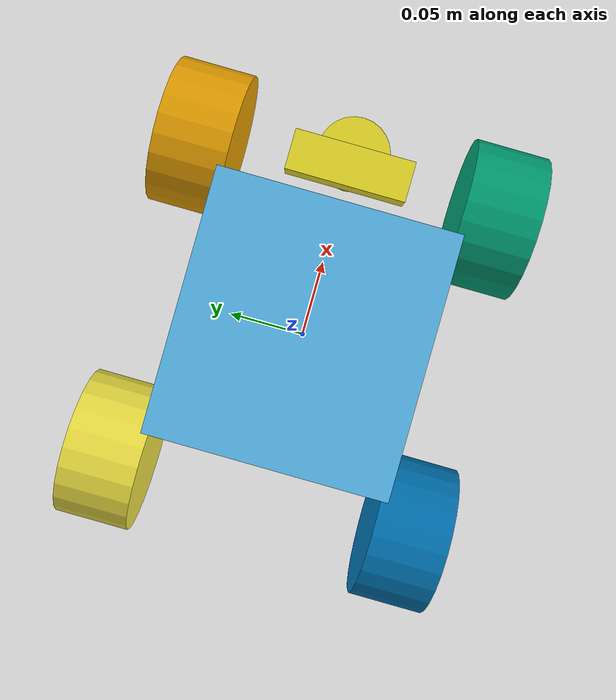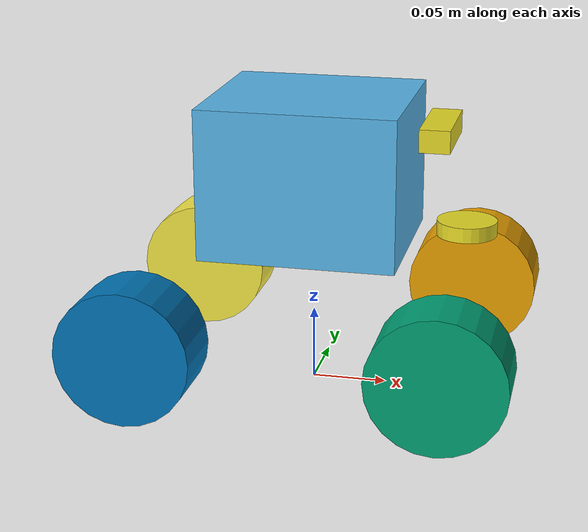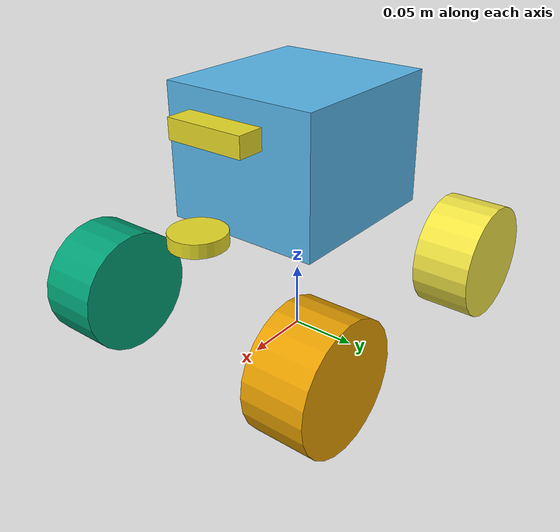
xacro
<?xml version="1.0"?>

<robot name="limo_ackerman" xmlns:xacro="http://ros.org/wiki/xacro">

    <xacro:arg name="robot_namespace" default="/" />
    <xacro:include filename="$(find limo_description)/urdf/limo_xacro.xacro" />
    <xacro:include filename="$(find limo_description)/urdf/limo_steering_hinge.xacro" />
    <xacro:include filename="$(find limo_description)/urdf/limo_ackerman.gazebo" />

    <!-- Variables -->
    <xacro:property name="M_PI" value="3.14159"/>

    <!-- Vehicle Geometries -->
    <xacro:property name="base_x_size" value="0.13" />
    <xacro:property name="base_y_size" value="0.12" />
    <xacro:property name="base_z_size" value="0.10" />

    <xacro:property name="wheelbase" value="0.2"/>
    <xacro:property name="track" value="0.14"/>
    <xacro:property name="wheel_vertical_offset" value="-0.100998" />
    <xacro:property name="base_mass" value="2.1557"/>

    <xacro:property name="wheel_length" value="0.045" />
    <xacro:property name="wheel_radius" value="0.045" />
    <link name="base_footprint"/>

    <joint name="base_joint" type="fixed">
    <parent link="base_footprint"/>
    <child link="base_link"/>
    <origin xyz="0.0 0.0 0.15" rpy="0 0 0"/>
    </joint>
    <!-- Base link -->
    <link name="base_link">
        <visual>
            <origin xyz="0 0 0" rpy="0 0 0" />
            <geometry>
                <box size="${base_x_size} ${base_y_size} ${base_z_size}"/>
            </geometry>
        </visual>
        <collision>
            <origin xyz="0 0 0" rpy="0 0 0" />
          <geometry>
              <box size="${base_x_size} ${base_y_size} ${base_z_size}"/>
          </geometry>
        </collision>
    </link>

    <link name="inertial_link">
        <inertial>
            <origin xyz="0.0 0.0 0.0" />
            <mass value="${base_mass}" />
            <inertia ixx="0.24" ixy="0" ixz="0"
                     iyy="0.96" iyz="0"
                     izz="0.96" />
        </inertial>
    </link>

    <joint name="inertial_joint" type="fixed">
        <origin xyz="0 0 0" rpy="0 0 0" />
        <parent link="base_link" />
        <child link="inertial_link" />
    </joint>

    <xacro:limo_laser parent_prefix="base_link" frame_prefix="laser">
        <origin xyz="0.103 0 -0.034" rpy="0 0 0"/>
    </xacro:limo_laser>

    <xacro:limo_depth_camera parent_prefix="base_link" frame_prefix="depth_camera">
        <origin xyz="0.084 0 0.03" rpy="0 0 0"/>
    </xacro:limo_depth_camera>

    <xacro:limo_imu parent_prefix="base_link" frame_prefix="imu">
        <origin xyz="0.0 0 -0.1" rpy="0 0 0"/>
    </xacro:limo_imu>

    <xacro:limo_left_steering_hinge parent_prefix="base_link" wheel_prefix="left_steering_hinge">
        <origin xyz="${wheelbase/2} ${track/2} ${wheel_vertical_offset}" rpy="0 0  0" />
    </xacro:limo_left_steering_hinge>

    <xacro:limo_right_steering_hinge parent_prefix="base_link" wheel_prefix="right_steering_hinge">
        <origin xyz="${wheelbase/2} ${-track/2} ${wheel_vertical_offset}" rpy="${M_PI} 0 0" />
    </xacro:limo_right_steering_hinge>

    <link name="rear_left_wheel_link">
        <inertial>
            <origin xyz="0 0 0" />
            <mass value="0.5" />
            <inertia ixx="0.01055" ixy="0" ixz="0" iyy="0.00075" iyz="0" izz="0.01055" />
        </inertial>
        <visual>
            <origin xyz="0 ${wheel_length/2} 0" rpy="1.57 0 0" />
            <geometry>
                <cylinder length="${wheel_length}" radius="${wheel_radius}" />
            </geometry>
        </visual>
        <collision>
            <origin xyz="0 ${wheel_length/2} 0" rpy="1.57 0 0" />
            <geometry>
                <cylinder length="${wheel_length}" radius="${wheel_radius}" />
            </geometry>
        </collision>
    </link>
    <joint name="rear_left_wheel" type="continuous">
        <parent link="base_link"/>
        <child link="rear_left_wheel_link"/>
        <origin xyz="${-wheelbase/2} ${track/2} ${wheel_vertical_offset}" rpy="0 0 0" />
        <axis xyz="0 1 0"/>
    </joint>

    <link name="rear_right_wheel_link">
        <inertial>
            <origin xyz="0 0 0" />
            <mass value="0.5" />
            <inertia ixx="0.01055" ixy="0" ixz="0" iyy="0.00075" iyz="0" izz="0.01055" />
        </inertial>
        <visual>
            <origin xyz="0 ${wheel_length/2} 0" rpy="1.57 0 0" />
                <geometry>
                  <cylinder length="${wheel_length}" radius="${wheel_radius}" />
                </geometry>
        </visual>
            <collision>
                <origin xyz="0 ${wheel_length/2} 0" rpy="1.57 0 0" />
                <geometry>
                  <cylinder length="${wheel_length}" radius="${wheel_radius}" />
                </geometry>
            </collision>
        </link>

        <joint name="rear_right_wheel" type="continuous">
            <parent link="base_link"/>
            <child link="rear_right_wheel_link"/>
            <origin xyz="${-wheelbase/2} ${-track/2} ${wheel_vertical_offset}" rpy="${M_PI} 0 0" />
            <axis xyz="0 -1 0"/>
        </joint>
</robot>

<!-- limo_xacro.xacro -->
<robot name="limo_xacro" xmlns:xacro="http://ros.org/wiki/xacro">
    <xacro:macro name="limo_wheel1" params="parent_prefix wheel_prefix reflect *joint_pose">
        <link name="${wheel_prefix}_wheel_link">
            <inertial>
                <origin xyz="0 0 0" />
                <mass value="0.5" />
                <inertia ixx="0.01055" ixy="0" ixz="0" iyy="0.00075" iyz="0" izz="0.01055" />
            </inertial>
            <visual>
                <origin xyz="0 ${wheel_length/2} 0" rpy="1.57 0 0" />
                <geometry>
                    <cylinder length="${wheel_length}" radius="${wheel_radius}" />
                </geometry>
            </visual>
            <collision>
              <origin xyz="0 ${wheel_length/2} 0" rpy="1.57 0 0" />
              <geometry>
                  <cylinder length="${wheel_length}" radius="${wheel_radius}" />
              </geometry>
            </collision>
        </link>

        <joint name="${wheel_prefix}_wheel" type="continuous">
            <parent link="${parent_prefix}"/>
            <child link="${wheel_prefix}_wheel_link"/>
            <xacro:insert_block name="joint_pose"/>
            <axis xyz="0 ${reflect*1} 0"/>
        </joint>
    </xacro:macro>

    <xacro:macro name="limo_wheel2" params="parent_prefix wheel_prefix reflect *joint_pose">
        <link name="${wheel_prefix}_wheel_link">
            <inertial>
                <origin xyz="0 0 0" />
                <mass value="0.5" />
                <inertia ixx="0.01055" ixy="0" ixz="0" iyy="0.00075" iyz="0" izz="0.01055" />
            </inertial>
            <visual>
                <origin xyz="0 ${wheel_length/2} 0" rpy="1.57 0 0" />
                <geometry>
                    <cylinder length="${wheel_length}" radius="${wheel_radius}" />
                </geometry>
            </visual>
            <collision>
              <origin xyz="0 ${wheel_length/2} 0" rpy="1.57 0 0" />
              <geometry>
                  <cylinder length="${wheel_length}" radius="${wheel_radius}" />
              </geometry>
            </collision>
        </link>

        <joint name="${wheel_prefix}_wheel" type="continuous">
            <parent link="${parent_prefix}"/>
            <child link="${wheel_prefix}_wheel_link"/>
            <xacro:insert_block name="joint_pose"/>
            <axis xyz="0 ${reflect*1} 0"/>
        </joint>
    </xacro:macro>

    <xacro:macro name="limo_wheel3" params="parent_prefix wheel_prefix reflect *joint_pose">
        <link name="${wheel_prefix}_wheel_link">
            <inertial>
                <origin xyz="0 0 0" />
                <mass value="0.5" />
                <inertia ixx="0.01055" ixy="0" ixz="0" iyy="0.00075" iyz="0" izz="0.01055" />
            </inertial>
            <visual>
                <origin xyz="0 ${wheel_length/2} 0" rpy="1.57 0 0" />
                <geometry>
                    <cylinder length="${wheel_length}" radius="${wheel_radius}" />
                </geometry>
            </visual>
            <collision>
              <origin xyz="0 ${wheel_length/2} 0" rpy="1.57 0 0" />
              <geometry>
                  <cylinder length="${wheel_length}" radius="${wheel_radius}" />
              </geometry>
            </collision>
        </link>

        <joint name="${wheel_prefix}_wheel" type="continuous">
            <parent link="${parent_prefix}"/>
            <child link="${wheel_prefix}_wheel_link"/>
            <xacro:insert_block name="joint_pose"/>
            <axis xyz="0 ${reflect*1} 0"/>
        </joint>
    </xacro:macro>

    <xacro:macro name="limo_wheel4" params="parent_prefix wheel_prefix reflect *joint_pose">
        <link name="${wheel_prefix}_wheel_link">
            <inertial>
                <origin xyz="0 0 0" />
                <mass value="0.5" />
                <inertia ixx="0.01055" ixy="0" ixz="0" iyy="0.00075" iyz="0" izz="0.01055" />
            </inertial>
            <visual>
                <origin xyz="0 ${wheel_length/2} 0" rpy="1.57 0 0" />
                <geometry>
                    <cylinder length="${wheel_length}" radius="${wheel_radius}" />
                </geometry>
            </visual>
            <collision>
              <origin xyz="0 ${wheel_length/2} 0" rpy="1.57 0 0" />
              <geometry>
                  <cylinder length="${wheel_length}" radius="${wheel_radius}" />
              </geometry>
            </collision>
        </link>

        <joint name="${wheel_prefix}_wheel" type="continuous">
            <parent link="${parent_prefix}"/>
            <child link="${wheel_prefix}_wheel_link"/>
            <xacro:insert_block name="joint_pose"/>
            <axis xyz="0 ${reflect*1} 0"/>
        </joint>
    </xacro:macro>

    <xacro:macro name="limo_laser" params="parent_prefix frame_prefix *joint_pose">
        <link name='${frame_prefix}_link'>
            <pose>0 0 0 0 0 0</pose>
            <inertial>
                <mass value="0.1"/>
                <origin xyz="0.0 0 0" rpy="0 0 0"/>
                <inertia
                    ixx="1e-6" ixy="0" ixz="0"
                    iyy="1e-6" iyz="0"
                    izz="1e-6"
                />
            </inertial>
            <visual name='laser_visual'>
                <origin xyz="0 0 0" rpy="0 0 0"/>
                <geometry>
                    <cylinder radius="0.02" length="0.01"/>
                </geometry>
                <material name='laser_material'>
                    <ambient>0.1 0.1 0.1 1</ambient>
                    <diffuse>0.1 0.1 0.2 1</diffuse>
                    <specular>0 0 0 0</specular>
                    <emissive>0 0 0 1</emissive>
                </material>
            </visual>
            <collision name='laser_collision'>
                <origin xyz="0 0 0" rpy="0 0 0"/>
                <geometry>
                    <cylinder radius="0.032" length="0.016"/>
                </geometry>
            </collision>
        </link>
        <joint type="fixed" name="laser_joint">
            <xacro:insert_block name="joint_pose"/>
            <child link="${frame_prefix}_link"/>
            <parent link="${parent_prefix}"/>
        </joint>
        <gazebo reference="${frame_prefix}_link">
            <material>Gazebo/Yellow</material>
        </gazebo>
    </xacro:macro>

    <xacro:macro name="limo_depth_camera" params="parent_prefix frame_prefix *joint_pose">
        <link name='${frame_prefix}_link'>
            <pose>0 0 0 0 0 0</pose>
            <inertial>
                <mass value="0.1"/>
                <origin xyz="0.0 0 0" rpy="0 0 0"/>
                <inertia
                    ixx="1e-6" ixy="0" ixz="0"
                    iyy="1e-6" iyz="0"
                    izz="1e-6"
                />
            </inertial>
            <visual name='depth_camera_visual'>
                <origin xyz="0 0 0" rpy="0 0 0"/>
                <geometry>
                    <box size="0.02 0.06 0.015"/>
                </geometry>
                <material name='depth_camera_material'>
                    <ambient>0.1 0.1 0.1 1</ambient>
                    <diffuse>0.1 0.1 0.2 1</diffuse>
                    <specular>0 0 0 0</specular>
                    <emissive>0 0 0 1</emissive>
                </material>
            </visual>
            <collision name='depth_camera_collision'>
                <origin xyz="0 0 0" rpy="0 0 0"/>
                <geometry>
                    <box size="0.02 0.06 0.015"/>
                </geometry>
            </collision>
        </link>

        <joint type="fixed" name="depth_camera_joint">
            <xacro:insert_block name="joint_pose"/>
            <child link="${frame_prefix}_link"/>
            <parent link="${parent_prefix}"/>
        </joint>
        <link name="depth_link"></link>

        <joint name="${frame_prefix}_to_camera_joint" type="fixed">
            <origin xyz="0 0 0" rpy="${-M_PI/2} 0 ${-M_PI/2} "/>
            <parent link="${frame_prefix}_link"/>
            <child link="depth_link"/>
          </joint>

        <gazebo reference="${frame_prefix}_link">
            <material>Gazebo/Yellow</material>
        </gazebo>
    </xacro:macro>

    <xacro:macro name="limo_imu" params="parent_prefix frame_prefix  *joint_pose">
        <link name='${frame_prefix}_link'>
            <pose>0 0 0 0 0 0</pose>
            <inertial>
                <mass value="0.01"/>
                <origin xyz="0.0 0 0" rpy="0 0 0"/>
                <inertia
                    ixx="1e-7" ixy="0" ixz="0"
                    iyy="1e-7" iyz="0"
                    izz="1e-7"
                />
            </inertial>
            <visual name='imu_visual'>
                <origin xyz="0 0 0" rpy="0 0 0"/>
                <geometry>
                    <box size="0.001 0.001 0.001"/>
                </geometry>
                <material name='imu_material'>
                    <ambient>0.1 0.1 0.1 1</ambient>
                    <diffuse>0.1 0.1 0.2 1</diffuse>
                    <specular>0 0 0 0</specular>
                    <emissive>0 0 0 1</emissive>
                </material>
            </visual>
            <collision name='imu_collision'>
                <origin xyz="0 0 0" rpy="0 0 0"/>
                <geometry>
                    <box size="0.001 0.001 0.001"/>
                </geometry>
            </collision>
        </link>
        <joint type="fixed" name="imu_joint">
            <xacro:insert_block name="joint_pose"/>
            <child link="${frame_prefix}_link"/>
            <parent link="${parent_prefix}"/>
        </joint>
        <gazebo reference="${frame_prefix}_link">
            <material>Gazebo/Yellow</material>
        </gazebo>
    </xacro:macro>
</robot>

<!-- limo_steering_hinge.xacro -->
<robot name="limo_steering_hinge" xmlns:xacro="http://ros.org/wiki/xacro">

    <xacro:macro name="limo_left_steering_hinge" params="parent_prefix wheel_prefix *joint_pose">
        <link name="${wheel_prefix}">
            <inertial>
              <mass value="0.25" />
              <inertia ixx="0.00525" ixy="0" ixz="0" iyy="0.00035" iyz="0" izz="0.00525" />
              <origin xyz="0 0 0" />

            </inertial>
            <visual>
                <origin xyz="0 0 0" rpy="0 0 0" />
                <geometry>
                  <cylinder length="0.0001" radius="0.0001" />
                </geometry>
            </visual>
            <collision>
              <origin xyz="0 ${wheel_length/2} 0" rpy="1.57 0 0" />
              <geometry>
                  <cylinder length="${wheel_length}" radius="${wheel_radius-0.01}" />
              </geometry>
            </collision>
        </link>

        <joint name="${wheel_prefix}_wheel" type="revolute">
            <parent link="${parent_prefix}"/>
            <child link="${wheel_prefix}"/>
            <xacro:insert_block name="joint_pose"/>
            <axis xyz="0 0 1" />
            <limit lower="-0.523598767" upper="0.523598767" effort="5" velocity="0.5" />
            <dynamics damping="1.0" friction="2.0"/>

        </joint>

        <link name="front_left_wheel_link">
          <inertial>
            <mass value="0.25" />
            <inertia ixx="0.00525" ixy="0" ixz="0" iyy="0.00035" iyz="0" izz="0.00525" />
            <origin xyz="0 0 0" />

          </inertial>
          <visual>
            <origin xyz="0 ${wheel_length/2} 0" rpy="1.57 0 0" />
            <geometry>
                <cylinder length="${wheel_length}" radius="${wheel_radius}" />
            </geometry>
          </visual>
          <collision>
            <origin xyz="0 ${wheel_length/2} 0" rpy="1.57 0 0" />
            <geometry>
                <cylinder length="${wheel_length}" radius="${wheel_radius}" />
            </geometry>
          </collision>
      </link>

      <joint name="front_left_wheel" type="continuous">
          <parent link="${wheel_prefix}"/>
          <child link="front_left_wheel_link"/>
          <origin xyz="0 0 0" rpy="0 0  0" />
          <axis xyz="0 1 0"/>
      </joint>
    </xacro:macro>

    <xacro:macro name="limo_right_steering_hinge" params="parent_prefix wheel_prefix *joint_pose">
        <link name="${wheel_prefix}">
          <inertial>
            <mass value="0.25" />
            <inertia ixx="0.00525" ixy="0" ixz="0" iyy="0.00035" iyz="0" izz="0.00525" />
            <origin xyz="0 0 0" />

          </inertial>
            <visual>
                <origin xyz="0 0 0" rpy="0 0 0" />
                <geometry>
                  <cylinder length="0.0001" radius="0.0001" />
                </geometry>
            </visual>
            <collision>
              <origin xyz="0 ${wheel_length/2} 0" rpy="1.57 0 0" />
              <geometry>
                  <cylinder length="${wheel_length}" radius="${wheel_radius-0.01}" />
              </geometry>
            </collision>
        </link>

        <joint name="${wheel_prefix}_wheel" type="revolute">
            <parent link="${parent_prefix}"/>
            <child link="${wheel_prefix}"/>
            <xacro:insert_block name="joint_pose"/>
            <axis xyz="0 0 -1"/>
            <limit lower="-0.523598767" upper="0.523598767" effort="5" velocity="0.5" />
            <dynamics damping="1.0" friction="2.0"/>
        </joint>

        <link name="front_right_wheel_link">
          <inertial>
            <mass value="0.25" />
            <inertia ixx="0.00525" ixy="0" ixz="0" iyy="0.00035" iyz="0" izz="0.00525" />
            <origin xyz="0 0 0" />
          </inertial>
          <visual>
            <origin xyz="0 ${wheel_length/2} 0" rpy="1.57 0 0" />
            <geometry>
                <cylinder length="${wheel_length}" radius="${wheel_radius}" />
            </geometry>
          </visual>
          <collision>
            <origin xyz="0 ${wheel_length/2} 0" rpy="1.57 0 0" />
            <geometry>
                <cylinder length="${wheel_length}" radius="${wheel_radius}" />
            </geometry>
          </collision>
      </link>

      <joint name="front_right_wheel" type="continuous">
          <parent link="${wheel_prefix}"/>
          <child link="front_right_wheel_link"/>
          <origin xyz="0 0 0" rpy="0 0  0" />
          <axis xyz="0 -1 0"/>
      </joint>
    </xacro:macro>
</robot>
